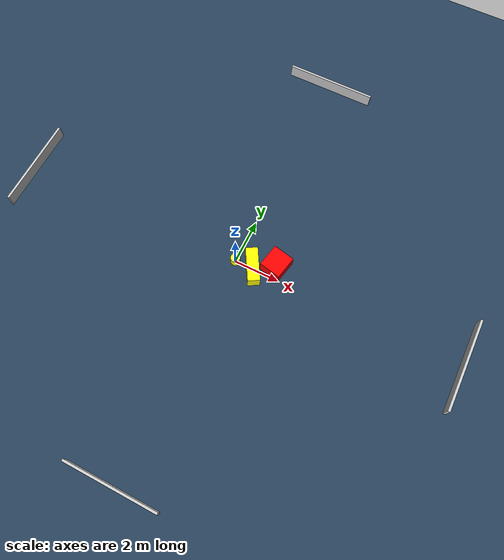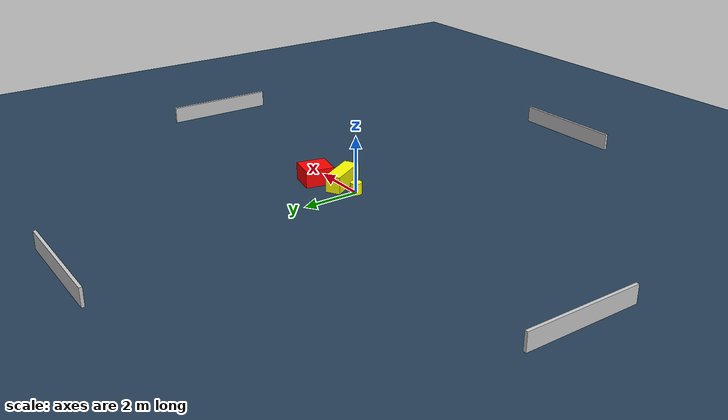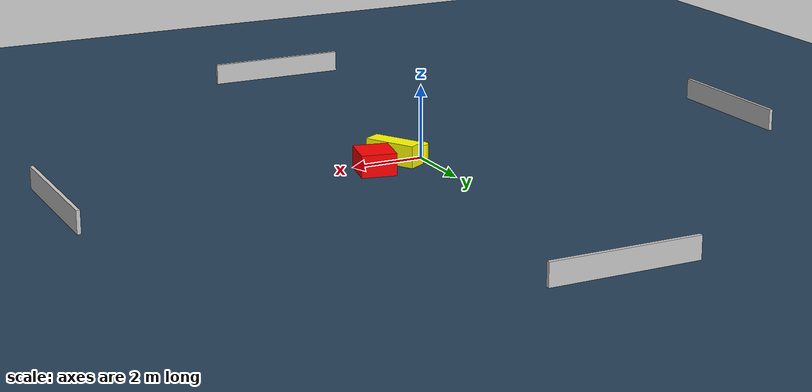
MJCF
<?xml version="1.0" ?>
<mujoco model="generated_environment">
  <option timestep="0.01" integrator="RK4" cone="elliptic"/>
  <default>
    <geom density="1"/>
  </default>
  <asset>
    <texture builtin="gradient" height="3072" name="skybox" rgb1="0.3 0.5 0.7" rgb2="0 0 0" type="skybox" width="512"/>
    <texture builtin="checker" height="300" name="groundplane" rgb1="0.2 0.3 0.4" rgb2="0.1 0.2 0.3" type="2d" width="300"/>
    <material name="groundplane" reflectance="0.2" texrepeat="5 5" texture="groundplane"/>
  </asset>
  <worldbody>
    <light dir="0 0 -1" directional="true" pos="0 0 1.5"/>
    <geom condim="3" friction="0.5 0.005 0.001" material="groundplane" name="floor" pos="0 0 0" size="0 0 0.05" type="plane"/>
    <body name="walls">
      <geom name="wall_1" condim="4" pos="-10.0 0.0 0.3" rgba="0.800000011920929 0.800000011920929 0.800000011920929 1.0" size="0.05 2.0 0.3" type="box"/>
      <geom name="wall_2" condim="4" pos="10.0 0.0 0.3" rgba="0.800000011920929 0.800000011920929 0.800000011920929 1.0" size="0.05 2.0 0.3" type="box"/>
      <geom name="wall_3" condim="4" pos="0.0 -10.0 0.3" rgba="0.800000011920929 0.800000011920929 0.800000011920929 1.0" size="2.0 0.05 0.3" type="box"/>
      <geom name="wall_4" condim="4" pos="0.0 10.0 0.3" rgba="0.800000011920929 0.800000011920929 0.800000011920929 1.0" size="2.0 0.05 0.3" type="box"/>
    </body>
    <body name="robot">
      <joint name="joint_x" type="slide" pos="0 0 0" axis="1 0 0"/>
      <joint name="joint_y" type="slide" pos="0 0 0" axis="0 1 0"/>
      <geom name="robot" type="cylinder" pos="0.0 0.0 0.2" size="0.2 0.2 0.0" mass="5.0" friction="1.0 0.005 0.0001" condim="4" rgba="1.0 1.0 0.0 1.0"/>
    </body>
    <body name="obstacle_1_movable">
      <geom name="obstacle_1_movable" condim="4" pos="0.7991269139941863 0.016506546963973853 0.3" euler="0 0 209.89066783925466" friction="0.0 0.005 0.001" rgba="1.0 1.0 0.0 1.0" size="0.2596217137049665 0.7331723861659833 0.3" type="box" mass="0.1"/>
      <joint type="free"/>
    </body>
    <body name="obstacle_2_static">
      <geom name="obstacle_2_static" condim="4" pos="1.6394453015777153 0.5672784388919536 0.3" euler="0 0 168.45966025875543" friction="0.0 0.005 0.001" rgba="1.0 0.0 0.0 1.0" size="0.47220191180730253 0.5087254454164458 0.3" type="box"/>
    </body>
  </worldbody>
  <actuator>
    <motor name="actuator_x" joint="joint_x" gear="1" ctrlrange="-1 1"/>
    <motor name="actuator_y" joint="joint_y" gear="1" ctrlrange="-1 1"/>
  </actuator>
</mujoco>
